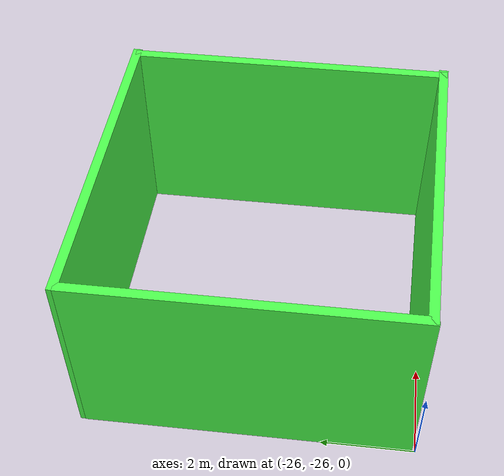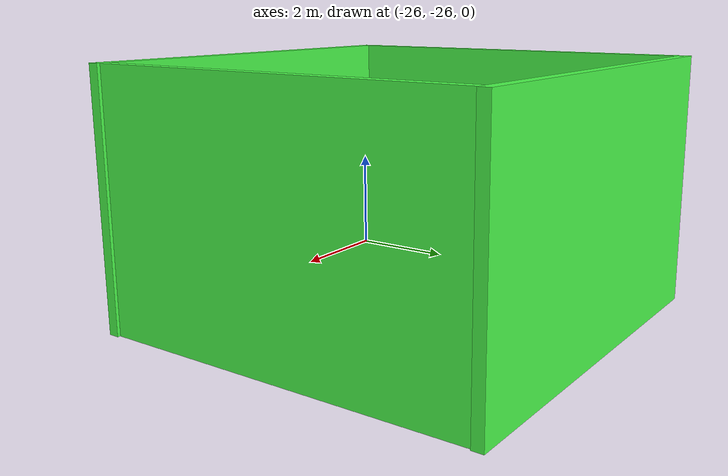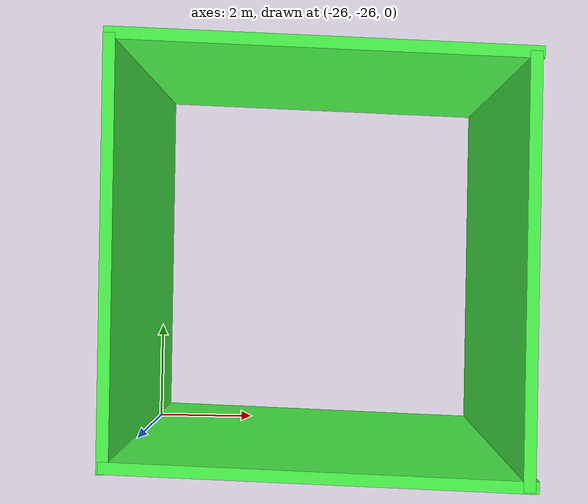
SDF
<sdf version="1.7">
 <world name="default">
  <model name="wall_clone_4_0">
   <pose>-22.5 -22.5 2.25 0 -0 0</pose>
   <frame name="closed_green_wall::__model__" attached_to="closed_green_wall::link_0">
    <pose relative_to="__model__">0 0 0 0 -0 0</pose>
   </frame>
   <link name="closed_green_wall::link_0">
    <inertial>
     <mass>1</mass>
     <inertia>
      <ixx>0.166667</ixx>
      <ixy>0</ixy>
      <ixz>0</ixz>
      <iyy>0.166667</iyy>
      <iyz>0</iyz>
      <izz>0.166667</izz>
     </inertia>
    </inertial>
    <pose relative_to="closed_green_wall::__model__">3.37098 -0.107634 -0 0 -0 0</pose>
    <visual name="visual">
     <geometry><box><size>0.2 7 4.5</size></box></geometry>
     <material>
      <lighting>1</lighting>
      <script><uri>file://media/materials/scripts/gazebo.material</uri><name>Gazebo/Grey</name></script>
      <shader type="vertex"><normal_map>__default__</normal_map></shader>
      <ambient>0.3 1 0.3 1</ambient>
      <diffuse>0.7 0.7 0.7 1</diffuse>
      <specular>0.01 0.01 0.01 1</specular>
      <emissive>0 0 0 1</emissive>
     </material>
    </visual>
    <collision name="collision">
     <geometry><box><size>0.2 7 4.5</size></box></geometry>
     <surface>
      <friction>
       <ode><mu>1</mu><mu2>1</mu2><fdir1>0 0 0</fdir1><slip1>0</slip1><slip2>0</slip2></ode>
       <torsional>
        <coefficient>1</coefficient>
        <patch_radius>0</patch_radius>
        <surface_radius>0</surface_radius>
        <use_patch_radius>1</use_patch_radius>
        <ode><slip>0</slip></ode>
       </torsional>
      </friction>
      <bounce><restitution_coefficient>0</restitution_coefficient><threshold>1e+06</threshold></bounce>
      <contact>
       <collide_without_contact>0</collide_without_contact>
       <collide_without_contact_bitmask>1</collide_without_contact_bitmask>
       <collide_bitmask>1</collide_bitmask>
       <ode>
        <soft_cfm>0</soft_cfm>
        <soft_erp>0.2</soft_erp>
        <kp>1e+13</kp>
        <kd>1</kd>
        <max_vel>0.01</max_vel>
        <min_depth>0</min_depth>
       </ode>
       <bullet>
        <split_impulse>1</split_impulse>
        <split_impulse_penetration_threshold>-0.01</split_impulse_penetration_threshold>
        <soft_cfm>0</soft_cfm>
        <soft_erp>0.2</soft_erp>
        <kp>1e+13</kp>
        <kd>1</kd>
       </bullet>
      </contact>
     </surface>
    </collision>
   </link>
   <link name="closed_green_wall::link_0_clone">
    <inertial>
     <mass>1</mass>
     <inertia>
      <ixx>0.166667</ixx>
      <ixy>0</ixy>
      <ixz>0</ixz>
      <iyy>0.166667</iyy>
      <iyz>0</iyz>
      <izz>0.166667</izz>
     </inertia>
    </inertial>
    <pose relative_to="closed_green_wall::__model__">0.024232 -3.42805 -0 0 0 -1.59986</pose>
    <visual name="visual">
     <geometry><box><size>0.2 7 4.5</size></box></geometry>
     <material>
      <lighting>1</lighting>
      <script><uri>file://media/materials/scripts/gazebo.material</uri><name>Gazebo/Grey</name></script>
      <shader type="vertex"><normal_map>__default__</normal_map></shader>
      <ambient>0.3 1 0.3 1</ambient>
      <diffuse>0.7 0.7 0.7 1</diffuse>
      <specular>0.01 0.01 0.01 1</specular>
      <emissive>0 0 0 1</emissive>
     </material>
    </visual>
    <collision name="collision">
     <geometry><box><size>0.2 7 4.5</size></box></geometry>
     <surface>
      <friction>
       <ode><mu>1</mu><mu2>1</mu2><fdir1>0 0 0</fdir1><slip1>0</slip1><slip2>0</slip2></ode>
       <torsional>
        <coefficient>1</coefficient>
        <patch_radius>0</patch_radius>
        <surface_radius>0</surface_radius>
        <use_patch_radius>1</use_patch_radius>
        <ode><slip>0</slip></ode>
       </torsional>
      </friction>
      <bounce><restitution_coefficient>0</restitution_coefficient><threshold>1e+06</threshold></bounce>
      <contact>
       <collide_without_contact>0</collide_without_contact>
       <collide_without_contact_bitmask>1</collide_without_contact_bitmask>
       <collide_bitmask>1</collide_bitmask>
       <ode>
        <soft_cfm>0</soft_cfm>
        <soft_erp>0.2</soft_erp>
        <kp>1e+13</kp>
        <kd>1</kd>
        <max_vel>0.01</max_vel>
        <min_depth>0</min_depth>
       </ode>
       <bullet>
        <split_impulse>1</split_impulse>
        <split_impulse_penetration_threshold>-0.01</split_impulse_penetration_threshold>
        <soft_cfm>0</soft_cfm>
        <soft_erp>0.2</soft_erp>
        <kp>1e+13</kp>
        <kd>1</kd>
       </bullet>
      </contact>
     </surface>
    </collision>
   </link>
   <link name="closed_green_wall::link_0_clone_0">
    <inertial>
     <mass>1</mass>
     <inertia>
      <ixx>0.166667</ixx>
      <ixy>0</ixy>
      <ixz>0</ixz>
      <iyy>0.166667</iyy>
      <iyz>0</iyz>
      <izz>0.166667</izz>
     </inertia>
    </inertial>
    <pose relative_to="closed_green_wall::__model__">-3.40001 0.065208 -0 0 -0 0</pose>
    <visual name="visual">
     <geometry><box><size>0.2 7 4.5</size></box></geometry>
     <material>
      <lighting>1</lighting>
      <script><uri>file://media/materials/scripts/gazebo.material</uri><name>Gazebo/Grey</name></script>
      <shader type="vertex"><normal_map>__default__</normal_map></shader>
      <ambient>0.3 1 0.3 1</ambient>
      <diffuse>0.7 0.7 0.7 1</diffuse>
      <specular>0.01 0.01 0.01 1</specular>
      <emissive>0 0 0 1</emissive>
     </material>
    </visual>
    <collision name="collision">
     <geometry><box><size>0.2 7 4.5</size></box></geometry>
     <surface>
      <friction>
       <ode><mu>1</mu><mu2>1</mu2><fdir1>0 0 0</fdir1><slip1>0</slip1><slip2>0</slip2></ode>
       <torsional>
        <coefficient>1</coefficient>
        <patch_radius>0</patch_radius>
        <surface_radius>0</surface_radius>
        <use_patch_radius>1</use_patch_radius>
        <ode><slip>0</slip></ode>
       </torsional>
      </friction>
      <bounce><restitution_coefficient>0</restitution_coefficient><threshold>1e+06</threshold></bounce>
      <contact>
       <collide_without_contact>0</collide_without_contact>
       <collide_without_contact_bitmask>1</collide_without_contact_bitmask>
       <collide_bitmask>1</collide_bitmask>
       <ode>
        <soft_cfm>0</soft_cfm>
        <soft_erp>0.2</soft_erp>
        <kp>1e+13</kp>
        <kd>1</kd>
        <max_vel>0.01</max_vel>
        <min_depth>0</min_depth>
       </ode>
       <bullet>
        <split_impulse>1</split_impulse>
        <split_impulse_penetration_threshold>-0.01</split_impulse_penetration_threshold>
        <soft_cfm>0</soft_cfm>
        <soft_erp>0.2</soft_erp>
        <kp>1e+13</kp>
        <kd>1</kd>
       </bullet>
      </contact>
     </surface>
    </collision>
   </link>
   <link name="closed_green_wall::link_0_clone_clone">
    <inertial>
     <mass>1</mass>
     <inertia>
      <ixx>0.166667</ixx>
      <ixy>0</ixy>
      <ixz>0</ixz>
      <iyy>0.166667</iyy>
      <iyz>0</iyz>
      <izz>0.166667</izz>
     </inertia>
    </inertial>
    <pose relative_to="closed_green_wall::__model__">0.004806 3.47046 -0 0 0 -1.59986</pose>
    <visual name="visual">
     <geometry><box><size>0.2 7 4.5</size></box></geometry>
     <material>
      <lighting>1</lighting>
      <script><uri>file://media/materials/scripts/gazebo.material</uri><name>Gazebo/Grey</name></script>
      <shader type="vertex"><normal_map>__default__</normal_map></shader>
      <ambient>0.3 1 0.3 1</ambient>
      <diffuse>0.7 0.7 0.7 1</diffuse>
      <specular>0.01 0.01 0.01 1</specular>
      <emissive>0 0 0 1</emissive>
     </material>
    </visual>
    <collision name="collision">
     <geometry><box><size>0.2 7 4.5</size></box></geometry>
     <surface>
      <friction>
       <ode><mu>1</mu><mu2>1</mu2><fdir1>0 0 0</fdir1><slip1>0</slip1><slip2>0</slip2></ode>
       <torsional>
        <coefficient>1</coefficient>
        <patch_radius>0</patch_radius>
        <surface_radius>0</surface_radius>
        <use_patch_radius>1</use_patch_radius>
        <ode><slip>0</slip></ode>
       </torsional>
      </friction>
      <bounce><restitution_coefficient>0</restitution_coefficient><threshold>1e+06</threshold></bounce>
      <contact>
       <collide_without_contact>0</collide_without_contact>
       <collide_without_contact_bitmask>1</collide_without_contact_bitmask>
       <collide_bitmask>1</collide_bitmask>
       <ode>
        <soft_cfm>0</soft_cfm>
        <soft_erp>0.2</soft_erp>
        <kp>1e+13</kp>
        <kd>1</kd>
        <max_vel>0.01</max_vel>
        <min_depth>0</min_depth>
       </ode>
       <bullet>
        <split_impulse>1</split_impulse>
        <split_impulse_penetration_threshold>-0.01</split_impulse_penetration_threshold>
        <soft_cfm>0</soft_cfm>
        <soft_erp>0.2</soft_erp>
        <kp>1e+13</kp>
        <kd>1</kd>
       </bullet>
      </contact>
     </surface>
    </collision>
   </link>
   <joint name="closed_green_wall::link_0_JOINT_1" type="fixed">
    <parent>closed_green_wall::link_0</parent>
    <child>closed_green_wall::link_0_clone_clone</child>
    <physics>
     <ode><limit><cfm>0</cfm><erp>0.2</erp></limit><suspension><cfm>0</cfm><erp>0.2</erp></suspension></ode>
    </physics>
   </joint>
   <joint name="closed_green_wall::link_0_clone_0_JOINT_3" type="fixed">
    <parent>closed_green_wall::link_0_clone_0</parent>
    <child>closed_green_wall::link_0_clone</child>
    <physics>
     <ode><limit><cfm>0</cfm><erp>0.2</erp></limit><suspension><cfm>0</cfm><erp>0.2</erp></suspension></ode>
    </physics>
   </joint>
   <joint name="closed_green_wall::link_0_clone_JOINT_0" type="fixed">
    <parent>closed_green_wall::link_0_clone</parent>
    <child>closed_green_wall::link_0</child>
    <physics>
     <ode><limit><cfm>0</cfm><erp>0.2</erp></limit><suspension><cfm>0</cfm><erp>0.2</erp></suspension></ode>
    </physics>
   </joint>
   <joint name="closed_green_wall::link_0_clone_clone_JOINT_2" type="fixed">
    <parent>closed_green_wall::link_0_clone_clone</parent>
    <child>closed_green_wall::link_0_clone_0</child>
    <physics>
     <ode><limit><cfm>0</cfm><erp>0.2</erp></limit><suspension><cfm>0</cfm><erp>0.2</erp></suspension></ode>
    </physics>
   </joint>
   <static>1</static>
  </model>
 </world>
</sdf>
